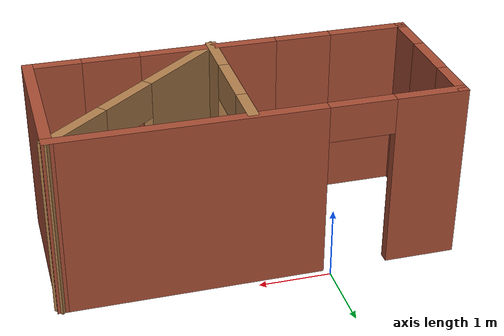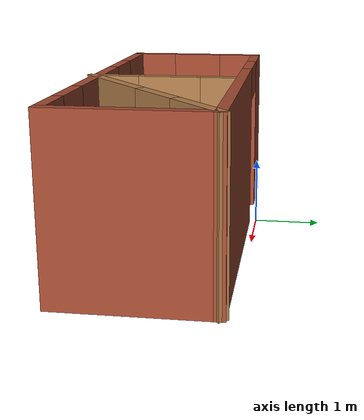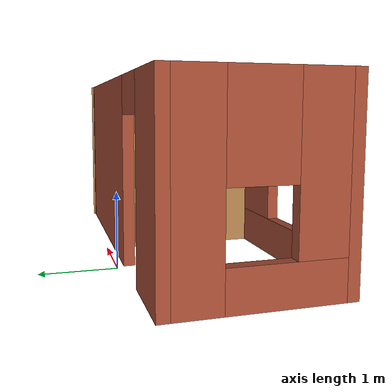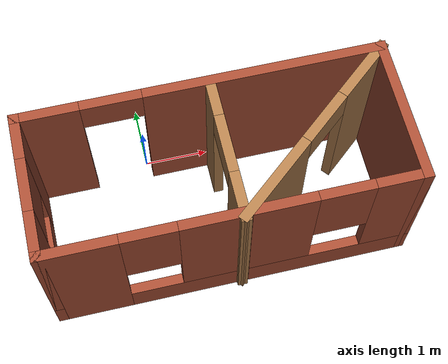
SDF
<?xml version='1.0'?>
<sdf version='1.7'>
  <model name='Complex_House'>
    <pose>0.94035 -1.21775 0 0 -0 0</pose>
    <link name='Wall_0'>
      <pose>-0.01535 -1.05225 0 0 -0 0</pose>
      <visual name='Wall_0_Visual_0'>
        <pose>-2.16791 0 1.25 0 -0 0</pose>
        <geometry>
          <box>
            <size>1.16419 0.15 2.5</size>
          </box>
        </geometry>
        <material>
          <script>
            <uri>file://media/materials/scripts/gazebo.material</uri>
            <name>Gazebo/Bricks</name>
          </script>
          <ambient>1 1 1 1</ambient>
        </material>
        <meta>
          <layer>0</layer>
        </meta>
      </visual>
      <collision name='Wall_0_Collision_0'>
        <geometry>
          <box>
            <size>1.16419 0.15 2.5</size>
          </box>
        </geometry>
        <pose>-2.16791 0 1.25 0 -0 0</pose>
      </collision>
      <visual name='Wall_0_Visual_1'>
        <pose>0.582092 0 0.25 0 -0 0</pose>
        <geometry>
          <box>
            <size>4.33582 0.15 0.5</size>
          </box>
        </geometry>
        <material>
          <script>
            <uri>file://media/materials/scripts/gazebo.material</uri>
            <name>Gazebo/Bricks</name>
          </script>
          <ambient>1 1 1 1</ambient>
        </material>
        <meta>
          <layer>0</layer>
        </meta>
      </visual>
      <collision name='Wall_0_Collision_1'>
        <geometry>
          <box>
            <size>4.33582 0.15 0.5</size>
          </box>
        </geometry>
        <pose>0.582092 0 0.25 0 -0 0</pose>
      </collision>
      <visual name='Wall_0_Visual_2'>
        <pose>0.182972 0 1.5 0 -0 0</pose>
        <geometry>
          <box>
            <size>1.93758 0.15 2</size>
          </box>
        </geometry>
        <material>
          <script>
            <uri>file://media/materials/scripts/gazebo.material</uri>
            <name>Gazebo/Bricks</name>
          </script>
          <ambient>1 1 1 1</ambient>
        </material>
        <meta>
          <layer>0</layer>
        </meta>
      </visual>
      <collision name='Wall_0_Collision_2'>
        <geometry>
          <box>
            <size>1.93758 0.15 2</size>
          </box>
        </geometry>
        <pose>0.182972 0 1.5 0 -0 0</pose>
      </collision>
      <visual name='Wall_0_Visual_3'>
        <pose>2.35088 0 1.5 0 -0 0</pose>
        <geometry>
          <box>
            <size>0.79824 0.15 2</size>
          </box>
        </geometry>
        <material>
          <script>
            <uri>file://media/materials/scripts/gazebo.material</uri>
            <name>Gazebo/Bricks</name>
          </script>
          <ambient>1 1 1 1</ambient>
        </material>
        <meta>
          <layer>0</layer>
        </meta>
      </visual>
      <collision name='Wall_0_Collision_3'>
        <geometry>
          <box>
            <size>0.79824 0.15 2</size>
          </box>
        </geometry>
        <pose>2.35088 0 1.5 0 -0 0</pose>
      </collision>
      <visual name='Wall_0_Visual_4'>
        <pose>-1.18582 0 1.9 0 -0 0</pose>
        <geometry>
          <box>
            <size>0.8 0.15 1.2</size>
          </box>
        </geometry>
        <material>
          <script>
            <uri>file://media/materials/scripts/gazebo.material</uri>
            <name>Gazebo/Bricks</name>
          </script>
          <ambient>1 1 1 1</ambient>
        </material>
        <meta>
          <layer>0</layer>
        </meta>
      </visual>
      <collision name='Wall_0_Collision_4'>
        <geometry>
          <box>
            <size>0.8 0.15 1.2</size>
          </box>
        </geometry>
        <pose>-1.18582 0 1.9 0 -0 0</pose>
      </collision>
      <visual name='Wall_0_Visual_5'>
        <pose>1.55176 0 1.9 0 -0 0</pose>
        <geometry>
          <box>
            <size>0.8 0.15 1.2</size>
          </box>
        </geometry>
        <material>
          <script>
            <uri>file://media/materials/scripts/gazebo.material</uri>
            <name>Gazebo/Bricks</name>
          </script>
          <ambient>1 1 1 1</ambient>
        </material>
        <meta>
          <layer>0</layer>
        </meta>
      </visual>
      <collision name='Wall_0_Collision_5'>
        <geometry>
          <box>
            <size>0.8 0.15 1.2</size>
          </box>
        </geometry>
        <pose>1.55176 0 1.9 0 -0 0</pose>
      </collision>
    </link>
    <link name='Wall_1'>
      <collision name='Wall_1_Collision'>
        <geometry>
          <box>
            <size>2.25 0.15 2.5</size>
          </box>
        </geometry>
        <pose>0 0 1.25 0 -0 0</pose>
      </collision>
      <visual name='Wall_1_Visual'>
        <pose>0 0 1.25 0 -0 0</pose>
        <geometry>
          <box>
            <size>2.25 0.15 2.5</size>
          </box>
        </geometry>
        <material>
          <script>
            <uri>file://media/materials/scripts/gazebo.material</uri>
            <name>Gazebo/Bricks</name>
          </script>
          <ambient>1 1 1 1</ambient>
        </material>
        <meta>
          <layer>0</layer>
        </meta>
      </visual>
      <pose>2.65965 -0.00225 0 0 -0 1.5708</pose>
    </link>
    <link name='Wall_10'>
      <pose>0.106788 -0.062051 0 0 -0 1.5708</pose>
      <visual name='Wall_10_Visual_0'>
        <pose>-0.749776 0 1.25 0 -0 0</pose>
        <geometry>
          <box>
            <size>0.750447 0.15 2.5</size>
          </box>
        </geometry>
        <material>
          <script>
            <uri>file://media/materials/scripts/gazebo.material</uri>
            <name>Gazebo/Wood</name>
          </script>
          <ambient>1 1 1 1</ambient>
        </material>
        <meta>
          <layer>0</layer>
        </meta>
      </visual>
      <collision name='Wall_10_Collision_0'>
        <geometry>
          <box>
            <size>0.750447 0.15 2.5</size>
          </box>
        </geometry>
        <pose>-0.749776 0 1.25 0 -0 0</pose>
      </collision>
      <visual name='Wall_10_Visual_1'>
        <pose>0.825224 0 1.25 0 -0 0</pose>
        <geometry>
          <box>
            <size>0.599553 0.15 2.5</size>
          </box>
        </geometry>
        <material>
          <script>
            <uri>file://media/materials/scripts/gazebo.material</uri>
            <name>Gazebo/Wood</name>
          </script>
          <ambient>1 1 1 1</ambient>
        </material>
        <meta>
          <layer>0</layer>
        </meta>
      </visual>
      <collision name='Wall_10_Collision_1'>
        <geometry>
          <box>
            <size>0.599553 0.15 2.5</size>
          </box>
        </geometry>
        <pose>0.825224 0 1.25 0 -0 0</pose>
      </collision>
      <visual name='Wall_10_Visual_2'>
        <pose>0.075447 0 2.25 0 -0 0</pose>
        <geometry>
          <box>
            <size>0.9 0.15 0.5</size>
          </box>
        </geometry>
        <material>
          <script>
            <uri>file://media/materials/scripts/gazebo.material</uri>
            <name>Gazebo/Wood</name>
          </script>
          <ambient>1 1 1 1</ambient>
        </material>
        <meta>
          <layer>0</layer>
        </meta>
      </visual>
      <collision name='Wall_10_Collision_2'>
        <geometry>
          <box>
            <size>0.9 0.15 0.5</size>
          </box>
        </geometry>
        <pose>0.075447 0 2.25 0 -0 0</pose>
      </collision>
    </link>
    <link name='Wall_12'>
      <pose>1.38322 -0.03215 0 0 -0 -2.43941</pose>
      <visual name='Wall_12_Visual_0'>
        <pose>-1.20471 0 1.25 0 -0 0</pose>
        <geometry>
          <box>
            <size>1.08451 0.15 2.5</size>
          </box>
        </geometry>
        <material>
          <script>
            <uri>file://media/materials/scripts/gazebo.material</uri>
            <name>Gazebo/Wood</name>
          </script>
          <ambient>1 1 1 1</ambient>
        </material>
        <meta>
          <layer>0</layer>
        </meta>
      </visual>
      <collision name='Wall_12_Collision_0'>
        <geometry>
          <box>
            <size>1.08451 0.15 2.5</size>
          </box>
        </geometry>
        <pose>-1.20471 0 1.25 0 -0 0</pose>
      </collision>
      <visual name='Wall_12_Visual_1'>
        <pose>0.992252 0 1.25 0 -0 0</pose>
        <geometry>
          <box>
            <size>1.50942 0.15 2.5</size>
          </box>
        </geometry>
        <material>
          <script>
            <uri>file://media/materials/scripts/gazebo.material</uri>
            <name>Gazebo/Wood</name>
          </script>
          <ambient>1 1 1 1</ambient>
        </material>
        <meta>
          <layer>0</layer>
        </meta>
      </visual>
      <collision name='Wall_12_Collision_1'>
        <geometry>
          <box>
            <size>1.50942 0.15 2.5</size>
          </box>
        </geometry>
        <pose>0.992252 0 1.25 0 -0 0</pose>
      </collision>
      <visual name='Wall_12_Visual_2'>
        <pose>-0.212459 0 2.25 0 -0 0</pose>
        <geometry>
          <box>
            <size>0.9 0.15 0.5</size>
          </box>
        </geometry>
        <material>
          <script>
            <uri>file://media/materials/scripts/gazebo.material</uri>
            <name>Gazebo/Wood</name>
          </script>
          <ambient>1 1 1 1</ambient>
        </material>
        <meta>
          <layer>0</layer>
        </meta>
      </visual>
      <collision name='Wall_12_Collision_2'>
        <geometry>
          <box>
            <size>0.9 0.15 0.5</size>
          </box>
        </geometry>
        <pose>-0.212459 0 2.25 0 -0 0</pose>
      </collision>
    </link>
    <link name='Wall_2'>
      <pose>-0.01535 1.04775 0 0 -0 3.14159</pose>
      <visual name='Wall_2_Visual_0'>
        <pose>-0.946257 0 1.25 0 -0 0</pose>
        <geometry>
          <box>
            <size>3.60749 0.15 2.5</size>
          </box>
        </geometry>
        <material>
          <script>
            <uri>file://media/materials/scripts/gazebo.material</uri>
            <name>Gazebo/Bricks</name>
          </script>
          <ambient>1 1 1 1</ambient>
        </material>
        <meta>
          <layer>0</layer>
        </meta>
      </visual>
      <collision name='Wall_2_Collision_0'>
        <geometry>
          <box>
            <size>3.60749 0.15 2.5</size>
          </box>
        </geometry>
        <pose>-0.946257 0 1.25 0 -0 0</pose>
      </collision>
      <visual name='Wall_2_Visual_1'>
        <pose>2.25374 0 1.25 0 -0 0</pose>
        <geometry>
          <box>
            <size>0.992515 0.15 2.5</size>
          </box>
        </geometry>
        <material>
          <script>
            <uri>file://media/materials/scripts/gazebo.material</uri>
            <name>Gazebo/Bricks</name>
          </script>
          <ambient>1 1 1 1</ambient>
        </material>
        <meta>
          <layer>0</layer>
        </meta>
      </visual>
      <collision name='Wall_2_Collision_1'>
        <geometry>
          <box>
            <size>0.992515 0.15 2.5</size>
          </box>
        </geometry>
        <pose>2.25374 0 1.25 0 -0 0</pose>
      </collision>
      <visual name='Wall_2_Visual_2'>
        <pose>1.30749 0 2.25 0 -0 0</pose>
        <geometry>
          <box>
            <size>0.9 0.15 0.5</size>
          </box>
        </geometry>
        <material>
          <script>
            <uri>file://media/materials/scripts/gazebo.material</uri>
            <name>Gazebo/Bricks</name>
          </script>
          <ambient>1 1 1 1</ambient>
        </material>
        <meta>
          <layer>0</layer>
        </meta>
      </visual>
      <collision name='Wall_2_Collision_2'>
        <geometry>
          <box>
            <size>0.9 0.15 0.5</size>
          </box>
        </geometry>
        <pose>1.30749 0 2.25 0 -0 0</pose>
      </collision>
    </link>
    <link name='Wall_3'>
      <pose>-2.69035 -0.00225 0 0 -0 -1.5708</pose>
      <visual name='Wall_3_Visual_0'>
        <pose>-0.770323 0 1.25 0 -0 0</pose>
        <geometry>
          <box>
            <size>0.709354 0.15 2.5</size>
          </box>
        </geometry>
        <material>
          <script>
            <uri>file://media/materials/scripts/gazebo.material</uri>
            <name>Gazebo/Bricks</name>
          </script>
          <ambient>1 1 1 1</ambient>
        </material>
        <meta>
          <layer>0</layer>
        </meta>
      </visual>
      <collision name='Wall_3_Collision_0'>
        <geometry>
          <box>
            <size>0.709354 0.15 2.5</size>
          </box>
        </geometry>
        <pose>-0.770323 0 1.25 0 -0 0</pose>
      </collision>
      <visual name='Wall_3_Visual_1'>
        <pose>0.354677 0 0.25 0 -0 0</pose>
        <geometry>
          <box>
            <size>1.54065 0.15 0.5</size>
          </box>
        </geometry>
        <material>
          <script>
            <uri>file://media/materials/scripts/gazebo.material</uri>
            <name>Gazebo/Bricks</name>
          </script>
          <ambient>1 1 1 1</ambient>
        </material>
        <meta>
          <layer>0</layer>
        </meta>
      </visual>
      <collision name='Wall_3_Collision_1'>
        <geometry>
          <box>
            <size>1.54065 0.15 0.5</size>
          </box>
        </geometry>
        <pose>0.354677 0 0.25 0 -0 0</pose>
      </collision>
      <visual name='Wall_3_Visual_2'>
        <pose>0.754677 0 1.5 0 -0 0</pose>
        <geometry>
          <box>
            <size>0.740646 0.15 2</size>
          </box>
        </geometry>
        <material>
          <script>
            <uri>file://media/materials/scripts/gazebo.material</uri>
            <name>Gazebo/Bricks</name>
          </script>
          <ambient>1 1 1 1</ambient>
        </material>
        <meta>
          <layer>0</layer>
        </meta>
      </visual>
      <collision name='Wall_3_Collision_2'>
        <geometry>
          <box>
            <size>0.740646 0.15 2</size>
          </box>
        </geometry>
        <pose>0.754677 0 1.5 0 -0 0</pose>
      </collision>
      <visual name='Wall_3_Visual_3'>
        <pose>-0.015646 0 1.9 0 -0 0</pose>
        <geometry>
          <box>
            <size>0.8 0.15 1.2</size>
          </box>
        </geometry>
        <material>
          <script>
            <uri>file://media/materials/scripts/gazebo.material</uri>
            <name>Gazebo/Bricks</name>
          </script>
          <ambient>1 1 1 1</ambient>
        </material>
        <meta>
          <layer>0</layer>
        </meta>
      </visual>
      <collision name='Wall_3_Collision_3'>
        <geometry>
          <box>
            <size>0.8 0.15 1.2</size>
          </box>
        </geometry>
        <pose>-0.015646 0 1.9 0 -0 0</pose>
      </collision>
    </link>
    <link name='Wall_4'>
      <collision name='Wall_4_Collision'>
        <geometry>
          <box>
            <size>0.15 0.15 2.5</size>
          </box>
        </geometry>
        <pose>0 0 1.25 0 -0 0</pose>
      </collision>
      <visual name='Wall_4_Visual'>
        <pose>0 0 1.25 0 -0 0</pose>
        <geometry>
          <box>
            <size>0.15 0.15 2.5</size>
          </box>
        </geometry>
        <material>
          <script>
            <uri>file://media/materials/scripts/gazebo.material</uri>
            <name>Gazebo/Bricks</name>
          </script>
          <ambient>1 1 1 1</ambient>
        </material>
        <meta>
          <layer>0</layer>
        </meta>
      </visual>
      <pose>-2.69035 -1.05225 0 0 -0 0</pose>
    </link>
    <static>1</static>
  </model>
</sdf>
